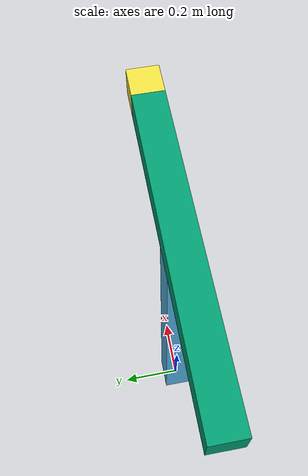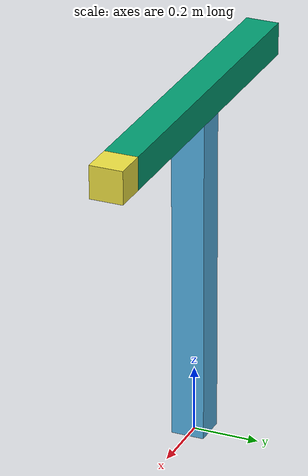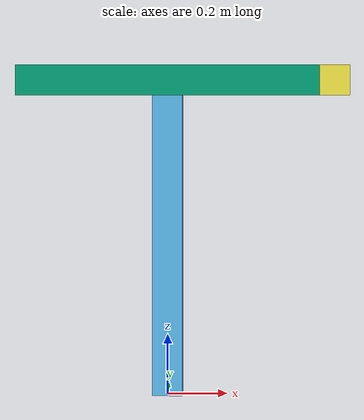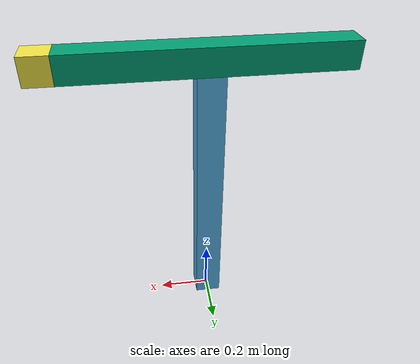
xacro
<?xml version="1.0"?>

<robot name="simple_bot" xmlns:xacro="http://www.ros.org/wiki/xacro">
  <xacro:property name="height1" value="1.0"/>
  <xacro:property name="width" value="0.1"/>
  <xacro:property name="mass1" value="1.0"/>
  <xacro:include filename="$(find ft_sensor_gazebo_sample)/urdf/robot.gazebo.xacro"/>
  <xacro:include filename="$(find ft_sensor_gazebo_sample)/urdf/robot.transmission.xacro"/>

  <link name="world"/>
  <joint name="world_joint" type="fixed">
    <parent link="world"/>
    <child link="base_link"/>
  </joint>

  <link name="base_link">
    <collision>
      <origin xyz="0 0 ${height1/2}" rpy="0 0 0"/>
      <geometry>
        <box size="${width} ${width} ${height1}"/>
      </geometry>
    </collision>

    <visual>
      <origin xyz="0 0 ${height1/2}" rpy="0 0 0"/>
      <geometry>
        <box size="${width} ${width} ${height1}"/>
      </geometry>
    </visual>

    <inertial>
      <origin xyz="0 0 ${height1/2}" rpy= "0 0 0"/>
      <mass value="${mass1}"/>
      <inertia
				ixx="${mass1 / 12.0 * (width*width + height1*height1)}" ixy="0.0" ixz="0.0"
				iyy="${mass1 / 12.0 * (width*width + height1*height1)}" iyz="0.0"
				izz="${mass1 / 12.0 * (width*width + width+width)}"/>
    </inertial>
  </link>

  <joint name="base_to_arm_joint" type="prismatic">
    <parent  link="base_link"/>
    <child link="arm_link"/>
    <limit effort="1000.0" lower="-0.5" upper="0.5" velocity="0.5"/>
    <origin xyz="0 0 ${height1+width/2}" rpy="0 0 0"/>
  </joint>

  <link name="arm_link">
    <collision>
      <origin xyz="0 0 0" rpy="0 0 0"/>
      <geometry>
        <box size="${height1} ${width} ${width}"/>
      </geometry>
    </collision>

    <visual>
      <origin xyz="0 0 0" rpy="0 0 0"/>
      <geometry>
        <box size="${height1} ${width} ${width}"/>
      </geometry>
    </visual>

    <inertial>
      <origin xyz="0 0 0" rpy= "0 0 0"/>
      <mass value="${mass1}"/>
      <inertia
				ixx="${mass1 / 12.0 * (width*width + height1*height1)}" ixy="0.0" ixz="0.0"
				iyy="${mass1 / 12.0 * (width*width + height1*height1)}" iyz="0.0"
				izz="${mass1 / 12.0 * (width*width + width+width)}"/>
    </inertial>
  </link>

	<joint name="ft_sensor_joint" type="revolute">
		<parent link="arm_link"/>
		<child link="end_effector"/>
    <origin xyz="${height1/2} 0 0" rpy="0 0 0"/>
		<axis xyz="0 0 1"/>
		<limit lower="0" upper="0" effort="0.0" velocity="0.0"/>
	</joint>

  <link name="end_effector">
    <collision>
      <origin xyz="${width/2} 0 0" rpy="0 0 0"/>
      <geometry>
        <box size="${width} ${width} ${width}"/>
      </geometry>
    </collision>

    <visual>
      <origin xyz="${width/2} 0 0" rpy="0 0 0"/>
      <geometry>
        <box size="${width} ${width} ${width}"/>
      </geometry>
    </visual>

    <inertial>
      <origin xyz="0 0 0" rpy= "0 0 0"/>
      <mass value="${mass1}"/>
      <inertia
				ixx="${mass1 / 12.0 * (width*width + width*width)}" ixy="0.0" ixz="0.0"
				iyy="${mass1 / 12.0 * (width*width + width*width)}" iyz="0.0"
				izz="${mass1 / 12.0 * (width*width + width+width)}"/>
    </inertial>
  </link>
</robot>
